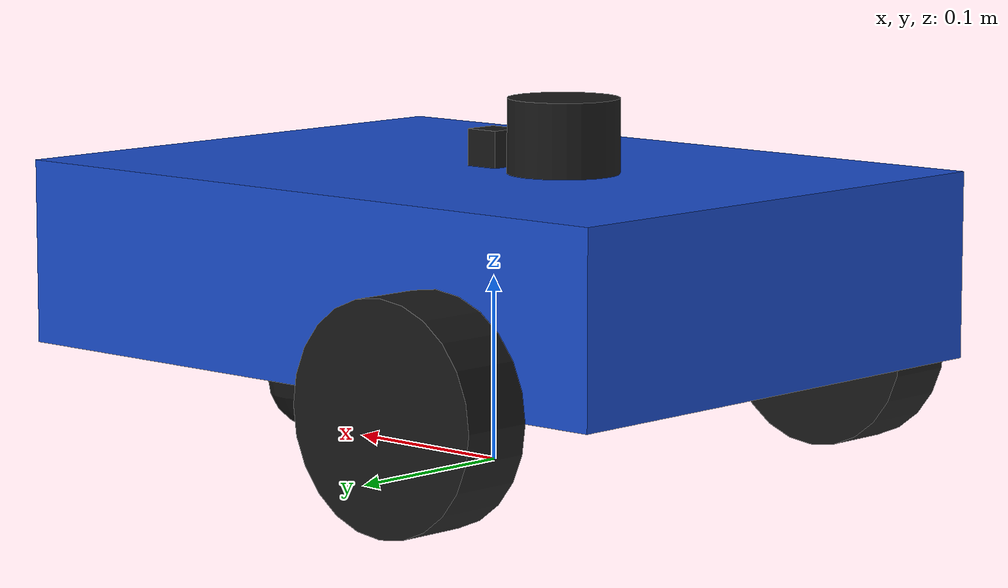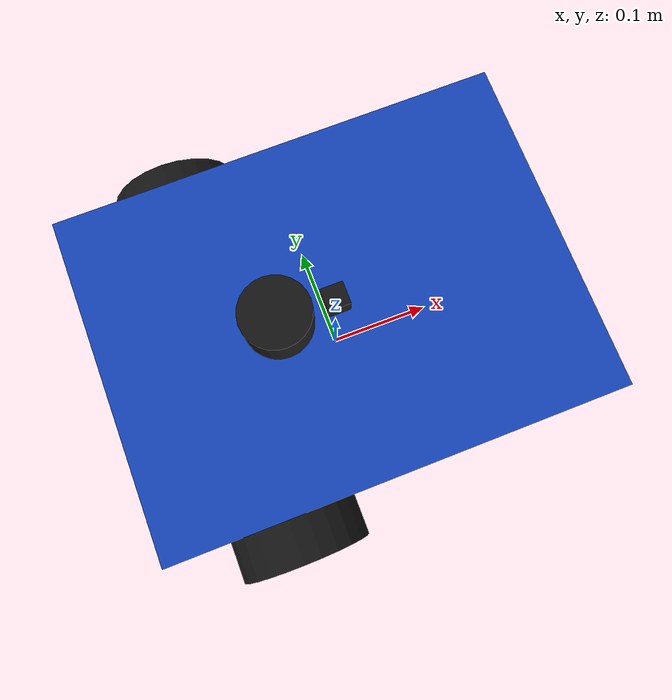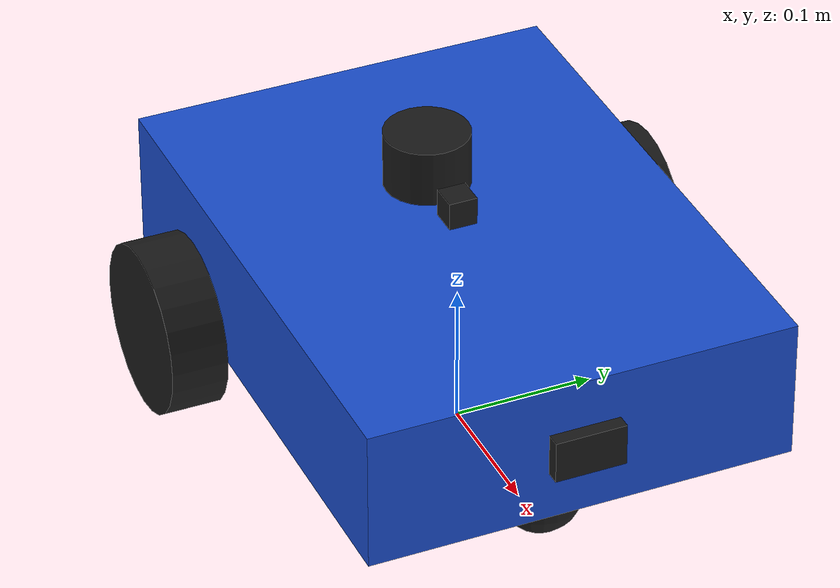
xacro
<?xml version="1.0"?>
<robot xmlns:xacro="http://www.ros.org/wiki/xacro" name="dif_bot">

  <!-- Propiedades Dimensionales -->
  <xacro:property name="base_length" value="0.4"/>
  <xacro:property name="base_width" value="0.3"/>
  <xacro:property name="base_height" value="0.1"/>
  <xacro:property name="wheel_radius" value="0.06"/>
  <xacro:property name="wheel_width" value="0.04"/>

  <!-- MACROS DE INERCIA -->
  <xacro:macro name="box_inertia" params="m x y z o_xyz o_rpy">
    <inertial>
      <origin xyz="${o_xyz}" rpy="${o_rpy}"/>
      <mass value="${m}"/>
      <inertia ixx="${(m/12)*(y*y + z*z)}" ixy="0.0" ixz="0.0"
               iyy="${(m/12)*(x*x + z*z)}" iyz="0.0"
               izz="${(m/12)*(x*x + y*y)}"/>
    </inertial>
  </xacro:macro>

  <xacro:macro name="cylinder_inertia" params="m r h o_xyz o_rpy">
    <inertial>
      <origin xyz="${o_xyz}" rpy="${o_rpy}"/>
      <mass value="${m}"/>
      <inertia ixx="${(m/12)*(3*r*r + h*h)}" ixy="0.0" ixz="0.0"
               iyy="${(m/12)*(3*r*r + h*h)}" iyz="0.0"
               izz="${(m/2)*(r*r)}"/>
    </inertial>
  </xacro:macro>

  <xacro:macro name="sphere_inertia" params="m r o_xyz o_rpy">
    <inertial>
      <origin xyz="${o_xyz}" rpy="${o_rpy}"/>
      <mass value="${m}"/>
      <inertia ixx="${(2/5)*m*r*r}" ixy="0.0" ixz="0.0"
               iyy="${(2/5)*m*r*r}" iyz="0.0"
               izz="${(2/5)*m*r*r}"/>
    </inertial>
  </xacro:macro>

  <!-- MATERIALES -->
  <material name="blue"><color rgba="0.1 0.3 0.8 1.0"/></material>
  <material name="black"><color rgba="0.1 0.1 0.1 1.0"/></material>

  <!-- ================= ESTRUCTURA DEL ROBOT ================= -->

  <!-- Base Footprint -->
  <link name="base_footprint"/>

  <joint name="base_joint" type="fixed">
    <parent link="base_footprint"/>
    <child link="base_link"/>
    <origin xyz="0 0 ${wheel_radius}" rpy="0 0 0"/>
  </joint>

  <!-- Chasis (Base Link) -->
  <link name="base_link">
    <visual>
      <origin xyz="0 0 ${base_height/2}" rpy="0 0 0"/>
      <geometry>
        <box size="${base_length} ${base_width} ${base_height}"/>
      </geometry>
      <material name="blue"/>
    </visual>
    <collision>
      <origin xyz="0 0 ${base_height/2}" rpy="0 0 0"/>
      <geometry>
        <box size="${base_length} ${base_width} ${base_height}"/>
      </geometry>
    </collision>
    <xacro:box_inertia m="5.0" x="${base_length}" y="${base_width}" z="${base_height}" o_xyz="0 0 ${base_height/2}" o_rpy="0 0 0"/>
  </link>

  <!-- Macro para Ruedas de Tracción -->
  <xacro:macro name="wheel" params="prefix x_reflect y_reflect">
    <link name="${prefix}_wheel">
      <visual>
        <origin xyz="0 0 0" rpy="1.5708 0 0"/>
        <geometry>
          <cylinder radius="${wheel_radius}" length="${wheel_width}"/>
        </geometry>
        <material name="black"/>
      </visual>
      <collision>
        <origin xyz="0 0 0" rpy="1.5708 0 0"/>
        <geometry>
          <cylinder radius="${wheel_radius}" length="${wheel_width}"/>
        </geometry>
      </collision>
      <xacro:cylinder_inertia m="0.5" r="${wheel_radius}" h="${wheel_width}" o_xyz="0 0 0" o_rpy="1.5708 0 0"/>
    </link>

    <joint name="${prefix}_wheel_joint" type="continuous">
      <parent link="base_link"/>
      <child link="${prefix}_wheel"/>
      <origin xyz="${x_reflect * (base_length/4)} ${y_reflect * (base_width/2 + wheel_width/2)} 0" rpy="0 0 0"/>
      <axis xyz="0 1 0"/>
    </joint>
  </xacro:macro>

  <!-- Instanciar ruedas -->
  <xacro:wheel prefix="left" x_reflect="-1" y_reflect="1" />
  <xacro:wheel prefix="right" x_reflect="-1" y_reflect="-1" />

  <!-- Rueda Caster -->
  <link name="caster_wheel">
    <visual>
      <origin xyz="0 0 0" rpy="0 0 0"/>
      <geometry>
        <sphere radius="${wheel_radius/2}"/>
      </geometry>
      <material name="black"/>
    </visual>
    <collision>
      <origin xyz="0 0 0" rpy="0 0 0"/>
      <geometry>
        <sphere radius="${wheel_radius/2}"/>
      </geometry>
    </collision>
    <xacro:sphere_inertia m="0.2" r="${wheel_radius/2}" o_xyz="0 0 0" o_rpy="0 0 0"/>
  </link>

  <joint name="caster_joint" type="fixed">
    <parent link="base_link"/>
    <child link="caster_wheel"/>
    <origin xyz="${base_length/3} 0 ${-wheel_radius/2}" rpy="0 0 0"/>
  </joint>

  <!-- ================= INCLUSIÓN DE SENSORES ================= -->
  <!-- Esto carga el archivo sensors.xacro generado anteriormente -->
  <xacro:include filename="sensors.xacro" />

</robot>

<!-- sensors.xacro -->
<robot xmlns:xacro="http://www.ros.org/wiki/xacro">

  <!-- ================= IMU (Unidad de Medición Inercial) ================= -->
  <!-- Representada como una pequeña caja en el centro del robot -->
  <link name="imu_link">
    <visual>
      <geometry>
        <box size="0.02 0.02 0.02"/>
      </geometry>
      <material name="black"/>
    </visual>
    <collision>
      <geometry>
        <box size="0.02 0.02 0.02"/>
      </geometry>
    </collision>
    <xacro:box_inertia m="0.05" x="0.02" y="0.02" z="0.02" o_xyz="0 0 0" o_rpy="0 0 0"/>
  </link>

  <joint name="imu_joint" type="fixed">
    <parent link="base_link"/>
    <child link="imu_link"/>
    <!-- Se ubica justo encima del centro del chasis -->
    <origin xyz="0 0 ${base_height + 0.01}" rpy="0 0 0"/>
  </joint>

  <!-- ================= LIDAR (Sensor Láser 2D/3D) ================= -->
  <!-- Representado como un cilindro en la parte superior trasera -->
  <link name="lidar_link">
    <visual>
      <geometry>
        <cylinder radius="0.03" length="0.04"/>
      </geometry>
      <material name="black"/>
    </visual>
    <collision>
      <geometry>
        <cylinder radius="0.03" length="0.04"/>
      </geometry>
    </collision>
    <xacro:cylinder_inertia m="0.1" r="0.03" h="0.04" o_xyz="0 0 0" o_rpy="0 0 0"/>
  </link>

  <joint name="lidar_joint" type="fixed">
    <parent link="base_link"/>
    <child link="lidar_link"/>
    <!-- Retrasado en el eje X y elevado en Z -->
    <origin xyz="-0.05 0 ${base_height + 0.02}" rpy="0 0 0"/>
  </joint>

  <!-- ================= CÁMARA ================= -->
  <!-- Representada como una caja rectangular en el frente del robot -->
  <link name="camera_link">
    <visual>
      <geometry>
        <box size="0.02 0.05 0.03"/>
      </geometry>
      <material name="black"/>
    </visual>
    <collision>
      <geometry>
        <box size="0.02 0.05 0.03"/>
      </geometry>
    </collision>
    <xacro:box_inertia m="0.05" x="0.02" y="0.05" z="0.03" o_xyz="0 0 0" o_rpy="0 0 0"/>
  </link>

  <joint name="camera_joint" type="fixed">
    <parent link="base_link"/>
    <child link="camera_link"/>
    <!-- Justo en el borde frontal del chasis -->
    <origin xyz="${base_length/2} 0 ${base_height/2}" rpy="0 0 0"/>
  </joint>

</robot>
